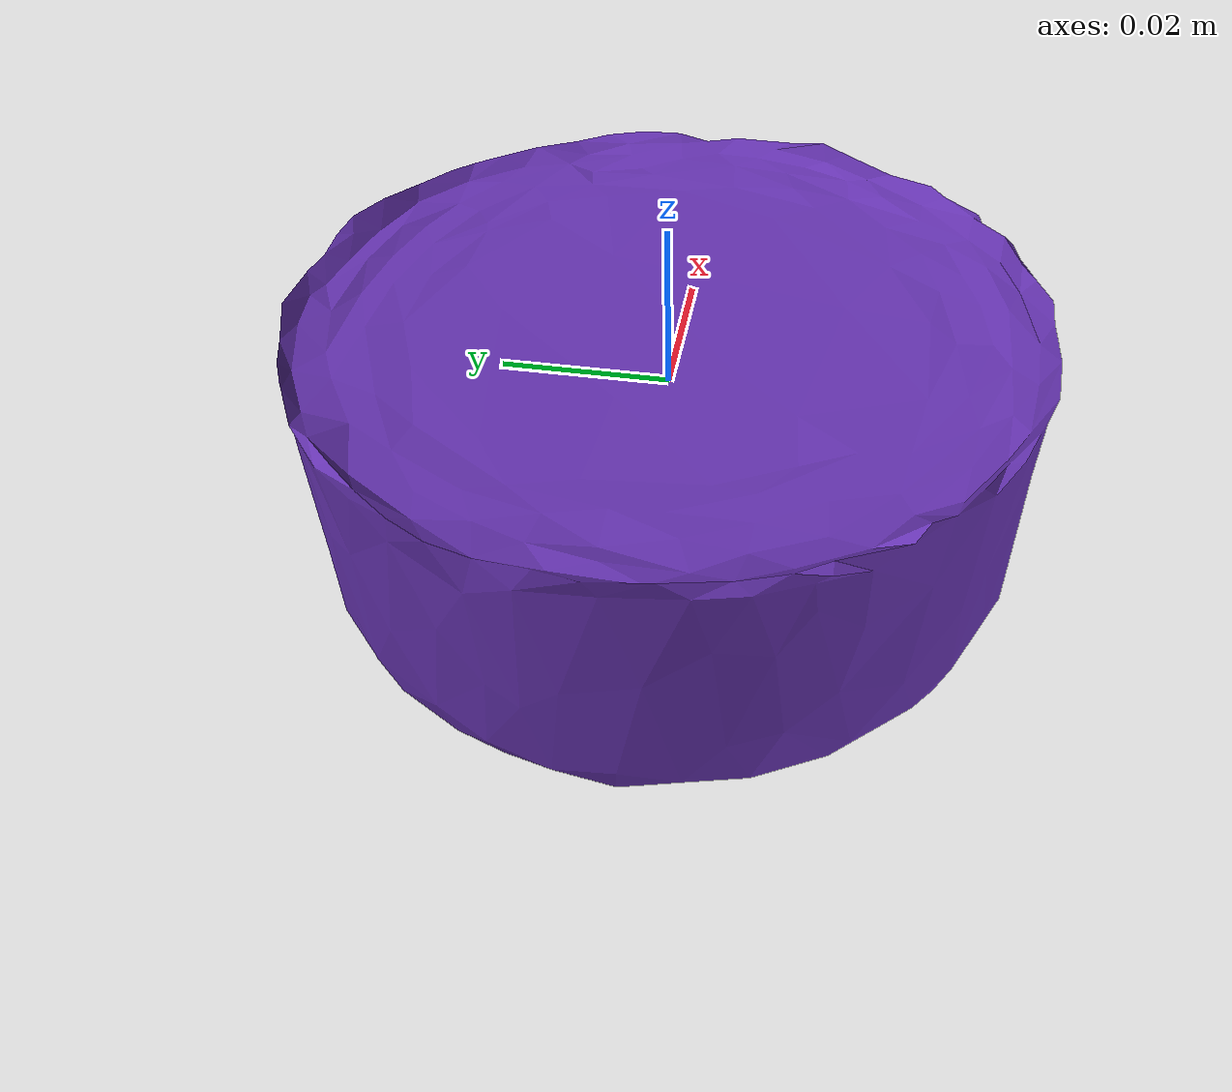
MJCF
<mujoco model="top_watertight_tiny">

  <asset>
    <mesh file="top_watertight_tiny.obj"/>
    <mesh file="top_watertight_tiny_collision_0.obj"/>
    <mesh file="top_watertight_tiny_collision_1.obj"/>
    <mesh file="top_watertight_tiny_collision_2.obj"/>
    <mesh file="top_watertight_tiny_collision_3.obj"/>
    <mesh file="top_watertight_tiny_collision_4.obj"/>
    <mesh file="top_watertight_tiny_collision_5.obj"/>
    <mesh file="top_watertight_tiny_collision_6.obj"/>
    <mesh file="top_watertight_tiny_collision_7.obj"/>
    <mesh file="top_watertight_tiny_collision_8.obj"/>
    <mesh file="top_watertight_tiny_collision_9.obj"/>
    <mesh file="top_watertight_tiny_collision_10.obj"/>
    <mesh file="top_watertight_tiny_collision_11.obj"/>
    <mesh file="top_watertight_tiny_collision_12.obj"/>
    <mesh file="top_watertight_tiny_collision_13.obj"/>
    <mesh file="top_watertight_tiny_collision_14.obj"/>
    <mesh file="top_watertight_tiny_collision_15.obj"/>
    <mesh file="top_watertight_tiny_collision_16.obj"/>
    <mesh file="top_watertight_tiny_collision_17.obj"/>
    <mesh file="top_watertight_tiny_collision_18.obj"/>
    <mesh file="top_watertight_tiny_collision_19.obj"/>
    <mesh file="top_watertight_tiny_collision_20.obj"/>
    <mesh file="top_watertight_tiny_collision_21.obj"/>
  </asset>
  <worldbody>
    <body name="top_watertight_tiny">
      <freejoint/>
      <geom solimp="0.90 0.95 0.001" solref="0.02 1.0" density="100" friction="0.95 0.4 0.3" rgba="0.4 0.2 0.7 1" mesh="top_watertight_tiny" group="2" type="mesh" contype="0" conaffinity="0"/>
      <geom solimp="0.90 0.95 0.001" solref="0.02 1.0" density="100" friction="0.95 0.4 0.3" mesh="top_watertight_tiny_collision_0" rgba="0.4845953289672148 0.08137668940698117 0.7431045508197378 1" group="3" type="mesh"/>
      <geom solimp="0.90 0.95 0.001" solref="0.02 1.0" density="100" friction="0.95 0.4 0.3" mesh="top_watertight_tiny_collision_1" rgba="0.11998877561473509 0.5620360428749558 0.1900825166946346 1" group="3" type="mesh"/>
      <geom solimp="0.90 0.95 0.001" solref="0.02 1.0" density="100" friction="0.95 0.4 0.3" mesh="top_watertight_tiny_collision_2" rgba="0.8729586551334325 0.4561803294270206 0.03404546019260757 1" group="3" type="mesh"/>
      <geom solimp="0.90 0.95 0.001" solref="0.02 1.0" density="100" friction="0.95 0.4 0.3" mesh="top_watertight_tiny_collision_3" rgba="0.8724853331823137 0.5033294654219272 0.13244496558253782 1" group="3" type="mesh"/>
      <geom solimp="0.90 0.95 0.001" solref="0.02 1.0" density="100" friction="0.95 0.4 0.3" mesh="top_watertight_tiny_collision_4" rgba="0.7431695985024324 0.40271304361728966 0.8697453721521434 1" group="3" type="mesh"/>
      <geom solimp="0.90 0.95 0.001" solref="0.02 1.0" density="100" friction="0.95 0.4 0.3" mesh="top_watertight_tiny_collision_5" rgba="0.4635443331885386 0.09199935152325633 0.5571154084009777 1" group="3" type="mesh"/>
      <geom solimp="0.90 0.95 0.001" solref="0.02 1.0" density="100" friction="0.95 0.4 0.3" mesh="top_watertight_tiny_collision_6" rgba="0.11863169956125386 0.13646440488995648 0.347290980623312 1" group="3" type="mesh"/>
      <geom solimp="0.90 0.95 0.001" solref="0.02 1.0" density="100" friction="0.95 0.4 0.3" mesh="top_watertight_tiny_collision_7" rgba="0.2349317138489586 0.8694299145973313 0.8042399646624928 1" group="3" type="mesh"/>
      <geom solimp="0.90 0.95 0.001" solref="0.02 1.0" density="100" friction="0.95 0.4 0.3" mesh="top_watertight_tiny_collision_8" rgba="0.8512437933504506 0.366566308387798 0.8689715853751183 1" group="3" type="mesh"/>
      <geom solimp="0.90 0.95 0.001" solref="0.02 1.0" density="100" friction="0.95 0.4 0.3" mesh="top_watertight_tiny_collision_9" rgba="0.7661632851555941 0.6411166375028476 0.4443231903226773 1" group="3" type="mesh"/>
      <geom solimp="0.90 0.95 0.001" solref="0.02 1.0" density="100" friction="0.95 0.4 0.3" mesh="top_watertight_tiny_collision_10" rgba="0.7578292017657506 0.8726057835193842 0.6066581345846248 1" group="3" type="mesh"/>
      <geom solimp="0.90 0.95 0.001" solref="0.02 1.0" density="100" friction="0.95 0.4 0.3" mesh="top_watertight_tiny_collision_11" rgba="0.6323779083745554 0.8304756094760636 0.8968963802944572 1" group="3" type="mesh"/>
      <geom solimp="0.90 0.95 0.001" solref="0.02 1.0" density="100" friction="0.95 0.4 0.3" mesh="top_watertight_tiny_collision_12" rgba="0.8976488046069505 0.6489099243895203 0.28030972255810416 1" group="3" type="mesh"/>
      <geom solimp="0.90 0.95 0.001" solref="0.02 1.0" density="100" friction="0.95 0.4 0.3" mesh="top_watertight_tiny_collision_13" rgba="0.272324212798263 0.12017379733992128 0.7813217907245097 1" group="3" type="mesh"/>
      <geom solimp="0.90 0.95 0.001" solref="0.02 1.0" density="100" friction="0.95 0.4 0.3" mesh="top_watertight_tiny_collision_14" rgba="0.18094989415366647 0.4670299972356676 0.22010340961442532 1" group="3" type="mesh"/>
      <geom solimp="0.90 0.95 0.001" solref="0.02 1.0" density="100" friction="0.95 0.4 0.3" mesh="top_watertight_tiny_collision_15" rgba="0.311393191611227 0.1897343114500003 0.17551840094401394 1" group="3" type="mesh"/>
      <geom solimp="0.90 0.95 0.001" solref="0.02 1.0" density="100" friction="0.95 0.4 0.3" mesh="top_watertight_tiny_collision_16" rgba="0.40951745366917214 0.8624493687572349 0.4978022523741932 1" group="3" type="mesh"/>
      <geom solimp="0.90 0.95 0.001" solref="0.02 1.0" density="100" friction="0.95 0.4 0.3" mesh="top_watertight_tiny_collision_17" rgba="0.062090241386318024 0.3827607589000894 0.08872957924730829 1" group="3" type="mesh"/>
      <geom solimp="0.90 0.95 0.001" solref="0.02 1.0" density="100" friction="0.95 0.4 0.3" mesh="top_watertight_tiny_collision_18" rgba="0.7257619737932778 0.07720809011815788 0.3983279782586663 1" group="3" type="mesh"/>
      <geom solimp="0.90 0.95 0.001" solref="0.02 1.0" density="100" friction="0.95 0.4 0.3" mesh="top_watertight_tiny_collision_19" rgba="0.6798282860033514 0.7257958195738544 0.797216959791156 1" group="3" type="mesh"/>
      <geom solimp="0.90 0.95 0.001" solref="0.02 1.0" density="100" friction="0.95 0.4 0.3" mesh="top_watertight_tiny_collision_20" rgba="0.4406398033697697 0.8254678927000464 0.0974818143746563 1" group="3" type="mesh"/>
      <geom solimp="0.90 0.95 0.001" solref="0.02 1.0" density="100" friction="0.95 0.4 0.3" mesh="top_watertight_tiny_collision_21" rgba="0.4740969291874849 0.17852480374211555 0.4828530120743316 1" group="3" type="mesh"/>
    </body>
  </worldbody>
</mujoco>
